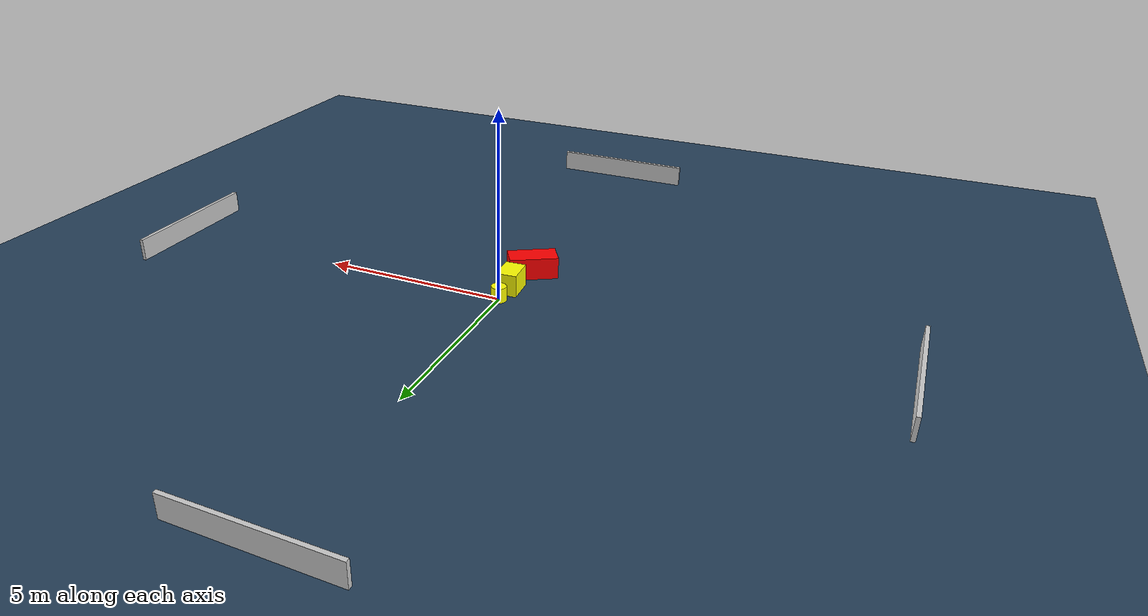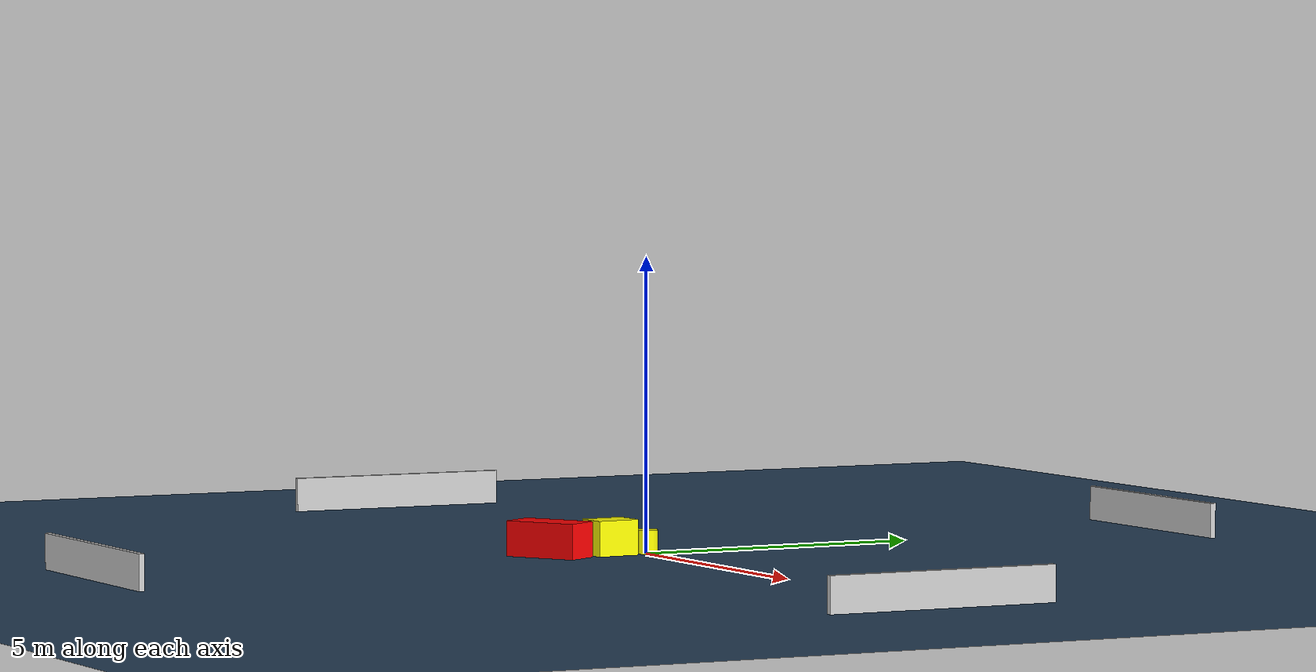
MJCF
<?xml version="1.0" ?>
<mujoco model="generated_environment">
  <option timestep="0.01" integrator="RK4" cone="elliptic"/>
  <default>
    <geom density="1"/>
  </default>
  <asset>
    <texture builtin="gradient" height="3072" name="skybox" rgb1="0.3 0.5 0.7" rgb2="0 0 0" type="skybox" width="512"/>
    <texture builtin="checker" height="300" name="groundplane" rgb1="0.2 0.3 0.4" rgb2="0.1 0.2 0.3" type="2d" width="300"/>
    <material name="groundplane" reflectance="0.2" texrepeat="5 5" texture="groundplane"/>
  </asset>
  <worldbody>
    <light dir="0 0 -1" directional="true" pos="0 0 1.5"/>
    <geom condim="3" friction="0.5 0.005 0.001" material="groundplane" name="floor" pos="0 0 0" size="0 0 0.05" type="plane"/>
    <body name="walls">
      <geom name="wall_1" condim="4" pos="-10.0 0.0 0.3" rgba="0.800000011920929 0.800000011920929 0.800000011920929 1.0" size="0.05 2.0 0.3" type="box"/>
      <geom name="wall_2" condim="4" pos="10.0 0.0 0.3" rgba="0.800000011920929 0.800000011920929 0.800000011920929 1.0" size="0.05 2.0 0.3" type="box"/>
      <geom name="wall_3" condim="4" pos="0.0 -10.0 0.3" rgba="0.800000011920929 0.800000011920929 0.800000011920929 1.0" size="2.0 0.05 0.3" type="box"/>
      <geom name="wall_4" condim="4" pos="0.0 10.0 0.3" rgba="0.800000011920929 0.800000011920929 0.800000011920929 1.0" size="2.0 0.05 0.3" type="box"/>
    </body>
    <body name="robot">
      <joint name="joint_x" type="slide" pos="0 0 0" axis="1 0 0"/>
      <joint name="joint_y" type="slide" pos="0 0 0" axis="0 1 0"/>
      <geom name="robot" type="cylinder" pos="0.0 0.0 0.2" size="0.2 0.2 0.0" mass="5.0" friction="1.0 0.005 0.0001" condim="4" rgba="1.0 1.0 0.0 1.0"/>
    </body>
    <body name="obstacle_1_movable">
      <geom name="obstacle_1_movable" condim="4" pos="-0.04139654999002787 -0.65583394924822 0.3" euler="0 0 3.756399401721562" friction="0.0 0.005 0.001" rgba="1.0 1.0 0.0 1.0" size="0.27570840471258456 0.37470931876416913 0.3" type="box" mass="0.1"/>
      <joint type="free"/>
    </body>
    <body name="obstacle_2_static">
      <geom name="obstacle_2_static" condim="4" pos="-0.2023818392441035 -1.7119348220639292 0.3" euler="0 0 120.91997045378733" friction="0.0 0.005 0.001" rgba="1.0 0.0 0.0 1.0" size="0.3174888005363463 0.6537546657466874 0.3" type="box"/>
    </body>
  </worldbody>
  <actuator>
    <motor name="actuator_x" joint="joint_x" gear="1" ctrlrange="-1 1"/>
    <motor name="actuator_y" joint="joint_y" gear="1" ctrlrange="-1 1"/>
  </actuator>
</mujoco>
